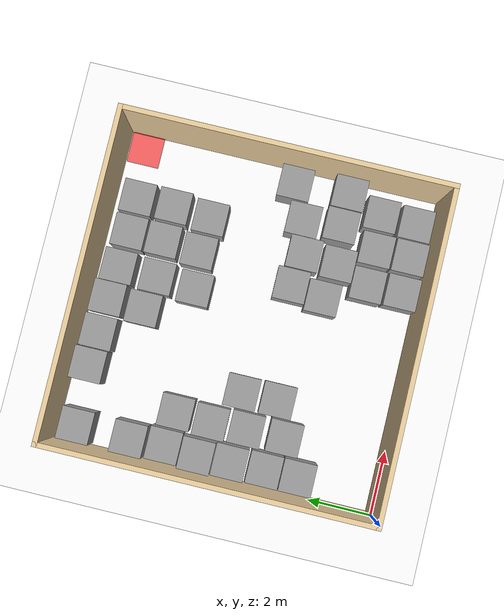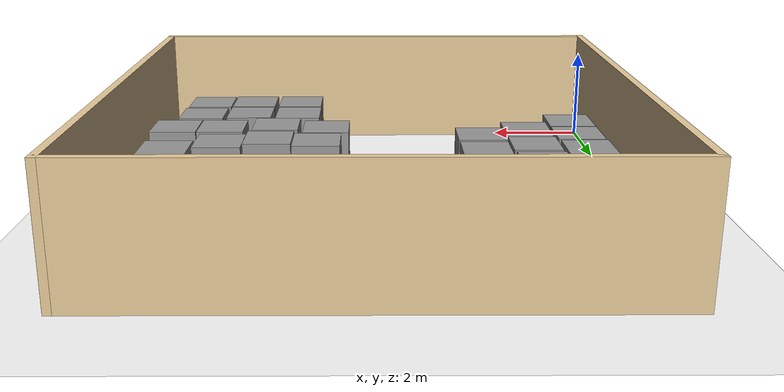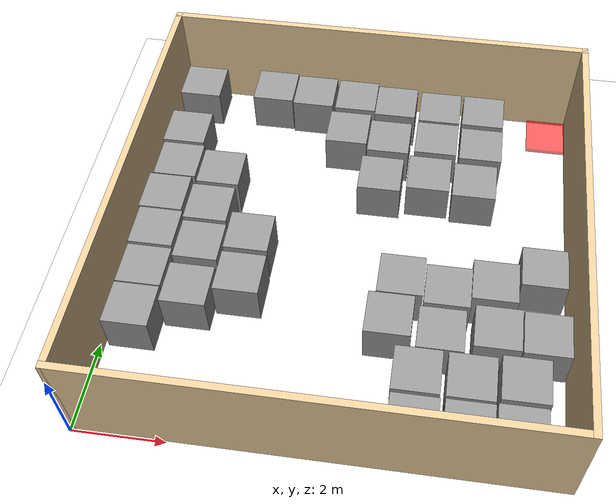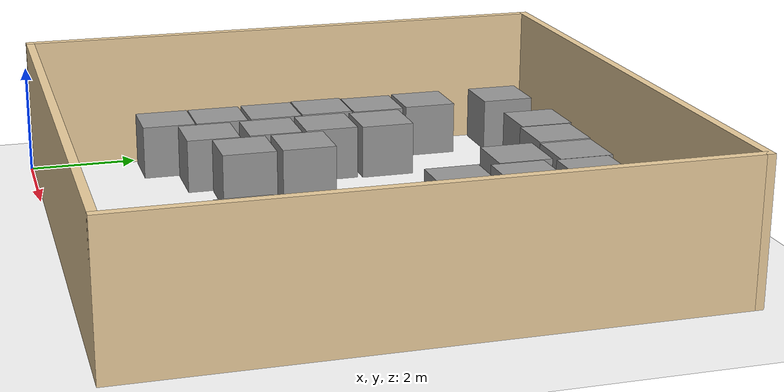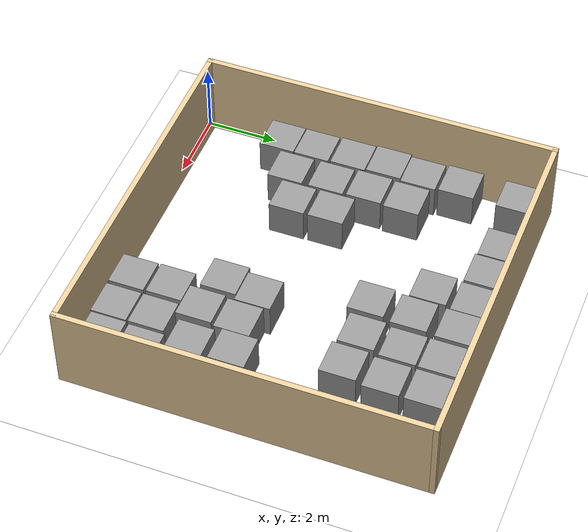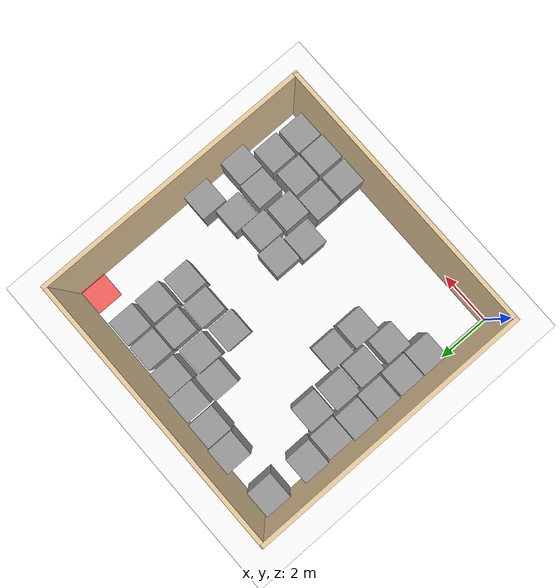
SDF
<sdf version="1.7">
 <world name="default">
  <light name="sun" type="directional">
   <pose>0 0 10 0 -0 0</pose>
   <diffuse>0.8 0.8 0.8 1</diffuse>
   <specular>0.2 0.2 0.2 1</specular>
   <attenuation>
    <range>1000</range>
    <constant>0.9</constant>
    <linear>0.01</linear>
    <quadratic>0.001</quadratic>
   </attenuation>
   <direction>-0.5 0.1 -0.9</direction>
   <spot><inner_angle>0</inner_angle><outer_angle>0</outer_angle><falloff>0</falloff></spot>
  </light>
  <gravity>0 0 -9.8</gravity>
  <magnetic_field>6e-06 2.3e-05 -4.2e-05</magnetic_field>
  <atmosphere type="adiabatic"/>
  <physics type="ode">
   <max_step_size>0.001</max_step_size>
   <real_time_factor>1</real_time_factor>
   <real_time_update_rate>1000</real_time_update_rate>
  </physics>
  <scene><ambient>0.4 0.4 0.4 1</ambient><background>0.7 0.7 0.7 1</background><shadows>1</shadows></scene>
  <audio><device>default</device></audio>
  <spherical_coordinates>
   <surface_model>EARTH_WGS84</surface_model>
   <latitude_deg>0</latitude_deg>
   <longitude_deg>0</longitude_deg>
   <elevation>0</elevation>
   <heading_deg>0</heading_deg>
  </spherical_coordinates>
  <model name="WALL">
   <pose>5.02351 5.11424 0 0 -0 0</pose>
   <link name="Wall_0">
    <collision name="Wall_0_Collision">
     <geometry><box><size>10.15 0.15 2.5</size></box></geometry>
     <pose>0 0 1.25 0 -0 0</pose>
    </collision>
    <visual name="Wall_0_Visual">
     <pose>0 0 1.25 0 -0 0</pose>
     <geometry><box><size>10.15 0.15 2.5</size></box></geometry>
     <material>
      <script><uri>file://media/materials/scripts/gazebo.material</uri><name>Gazebo/Grey</name></script>
      <ambient>0.921569 0.807843 0.615686 1</ambient>
     </material>
     <meta><layer>0</layer></meta>
    </visual>
    <pose>-5 -0 0 0 -0 1.5708</pose>
   </link>
   <link name="Wall_2">
    <collision name="Wall_2_Collision">
     <geometry><box><size>10.15 0.15 2.5</size></box></geometry>
     <pose>0 0 1.25 0 -0 0</pose>
    </collision>
    <visual name="Wall_2_Visual">
     <pose>0 0 1.25 0 -0 0</pose>
     <geometry><box><size>10.15 0.15 2.5</size></box></geometry>
     <material>
      <script><uri>file://media/materials/scripts/gazebo.material</uri><name>Gazebo/Grey</name></script>
      <ambient>0.921569 0.807843 0.615686 1</ambient>
     </material>
     <meta><layer>0</layer></meta>
    </visual>
    <pose>-0 -5 0 0 -0 0</pose>
   </link>
   <link name="Wall_4">
    <collision name="Wall_4_Collision">
     <geometry><box><size>10.15 0.15 2.5</size></box></geometry>
     <pose>0 0 1.25 0 -0 0</pose>
    </collision>
    <visual name="Wall_4_Visual">
     <pose>0 0 1.25 0 -0 0</pose>
     <geometry><box><size>10.15 0.15 2.5</size></box></geometry>
     <material>
      <script><uri>file://media/materials/scripts/gazebo.material</uri><name>Gazebo/Grey</name></script>
      <ambient>0.921569 0.807843 0.615686 1</ambient>
     </material>
     <meta><layer>0</layer></meta>
    </visual>
    <pose>5 -0 0 0 -0 1.5708</pose>
   </link>
   <link name="Wall_6">
    <collision name="Wall_6_Collision">
     <geometry><box><size>10.15 0.15 2.5</size></box></geometry>
     <pose>0 0 1.25 0 -0 0</pose>
    </collision>
    <visual name="Wall_6_Visual">
     <pose>0 0 1.25 0 -0 0</pose>
     <geometry><box><size>10.15 0.15 2.5</size></box></geometry>
     <material>
      <script><uri>file://media/materials/scripts/gazebo.material</uri><name>Gazebo/Grey</name></script>
      <ambient>0.921569 0.807843 0.615686 1</ambient>
     </material>
     <meta><layer>0</layer></meta>
    </visual>
    <pose>-0 5 0 0 -0 3.14159</pose>
   </link>
   <static>1</static>
  </model>
  <model name="ground_plane">
   <static>1</static>
   <link name="link">
    <collision name="collision">
     <geometry><plane><normal>0 0 1</normal><size>100 100</size></plane></geometry>
     <surface><friction><ode><mu>100</mu><mu2>50</mu2></ode></friction></surface>
    </collision>
    <visual name="visual">
     <cast_shadows>0</cast_shadows>
     <geometry><plane><normal>0 0 1</normal><size>100 100</size></plane></geometry>
     <material><ambient>1 1 1 1</ambient><diffuse>1 1 1 1</diffuse></material>
    </visual>
   </link>
   <pose>-1.76997 -0.846079 0 0 -0 0</pose>
  </model>
  <model name="goal_region">
   <static>1</static>
   <pose>9.5 9.5 0.05 0 -0 0</pose>
   <link name="link">
    <visual name="visual">
     <geometry><box><size>1 1 0.1</size></box></geometry>
     <material><ambient>1 0 0 0.6</ambient><diffuse>1 0 0 0.6</diffuse></material>
    </visual>
   </link>
  </model>
  <model name="start_marker"><static>1</static><pose>1 1 0 0 -0 0</pose></model>
  <model name="unit_box">
   <pose>0.684333 2.53291 0.5 0 -0 0.000202</pose>
   <link name="link">
    <inertial>
     <mass>1</mass>
     <inertia>
      <ixx>0.166667</ixx>
      <ixy>0</ixy>
      <ixz>0</ixz>
      <iyy>0.166667</iyy>
      <iyz>0</iyz>
      <izz>0.166667</izz>
     </inertia>
    </inertial>
    <collision name="collision"><geometry><box><size>1 1 1</size></box></geometry></collision>
    <visual name="visual">
     <geometry><box><size>1 1 1</size></box></geometry>
     <material>
      <script><name>Gazebo/Grey</name><uri>file://media/materials/scripts/gazebo.material</uri></script>
     </material>
    </visual>
   </link>
  </model>
  <model name="unit_box_0">
   <pose>0.686208 3.55625 0.499995 1e-05 -0 -0.002518</pose>
   <link name="link">
    <inertial>
     <mass>1</mass>
     <inertia>
      <ixx>0.166667</ixx>
      <ixy>0</ixy>
      <ixz>0</ixz>
      <iyy>0.166667</iyy>
      <iyz>0</iyz>
      <izz>0.166667</izz>
     </inertia>
    </inertial>
    <collision name="collision"><geometry><box><size>1 1 1</size></box></geometry></collision>
    <visual name="visual">
     <geometry><box><size>1 1 1</size></box></geometry>
     <material>
      <script><name>Gazebo/Grey</name><uri>file://media/materials/scripts/gazebo.material</uri></script>
     </material>
    </visual>
   </link>
  </model>
  <model name="unit_box_1">
   <pose>0.659016 4.62157 0.499995 1e-05 -0 0</pose>
   <link name="link">
    <inertial>
     <mass>1</mass>
     <inertia>
      <ixx>0.166667</ixx>
      <ixy>0</ixy>
      <ixz>0</ixz>
      <iyy>0.166667</iyy>
      <iyz>0</iyz>
      <izz>0.166667</izz>
     </inertia>
    </inertial>
    <collision name="collision"><geometry><box><size>1 1 1</size></box></geometry></collision>
    <visual name="visual">
     <geometry><box><size>1 1 1</size></box></geometry>
     <material>
      <script><name>Gazebo/Grey</name><uri>file://media/materials/scripts/gazebo.material</uri></script>
     </material>
    </visual>
   </link>
  </model>
  <model name="unit_box_2">
   <pose>0.615553 5.64892 0.499995 0 -1e-05 0</pose>
   <link name="link">
    <inertial>
     <mass>1</mass>
     <inertia>
      <ixx>0.166667</ixx>
      <ixy>0</ixy>
      <ixz>0</ixz>
      <iyy>0.166667</iyy>
      <iyz>0</iyz>
      <izz>0.166667</izz>
     </inertia>
    </inertial>
    <collision name="collision"><geometry><box><size>1 1 1</size></box></geometry></collision>
    <visual name="visual">
     <geometry><box><size>1 1 1</size></box></geometry>
     <material>
      <script><name>Gazebo/Grey</name><uri>file://media/materials/scripts/gazebo.material</uri></script>
     </material>
    </visual>
   </link>
  </model>
  <model name="unit_box_3">
   <pose>0.683261 6.67126 0.499995 1e-05 -0 0</pose>
   <link name="link">
    <inertial>
     <mass>1</mass>
     <inertia>
      <ixx>0.166667</ixx>
      <ixy>0</ixy>
      <ixz>0</ixz>
      <iyy>0.166667</iyy>
      <iyz>0</iyz>
      <izz>0.166667</izz>
     </inertia>
    </inertial>
    <collision name="collision"><geometry><box><size>1 1 1</size></box></geometry></collision>
    <visual name="visual">
     <geometry><box><size>1 1 1</size></box></geometry>
     <material>
      <script><name>Gazebo/Grey</name><uri>file://media/materials/scripts/gazebo.material</uri></script>
     </material>
    </visual>
   </link>
  </model>
  <model name="unit_box_5">
   <pose>1.7333 4.37155 0.499995 1e-05 -0 0</pose>
   <link name="link">
    <inertial>
     <mass>1</mass>
     <inertia>
      <ixx>0.166667</ixx>
      <ixy>0</ixy>
      <ixz>0</ixz>
      <iyy>0.166667</iyy>
      <iyz>0</iyz>
      <izz>0.166667</izz>
     </inertia>
    </inertial>
    <collision name="collision"><geometry><box><size>1 1 1</size></box></geometry></collision>
    <visual name="visual">
     <geometry><box><size>1 1 1</size></box></geometry>
     <material>
      <script><name>Gazebo/Grey</name><uri>file://media/materials/scripts/gazebo.material</uri></script>
     </material>
    </visual>
   </link>
  </model>
  <model name="unit_box_6">
   <pose>1.69952 5.46042 0.499995 0 -1e-05 0</pose>
   <link name="link">
    <inertial>
     <mass>1</mass>
     <inertia>
      <ixx>0.166667</ixx>
      <ixy>0</ixy>
      <ixz>0</ixz>
      <iyy>0.166667</iyy>
      <iyz>0</iyz>
      <izz>0.166667</izz>
     </inertia>
    </inertial>
    <collision name="collision"><geometry><box><size>1 1 1</size></box></geometry></collision>
    <visual name="visual">
     <geometry><box><size>1 1 1</size></box></geometry>
     <material>
      <script><name>Gazebo/Grey</name><uri>file://media/materials/scripts/gazebo.material</uri></script>
     </material>
    </visual>
   </link>
  </model>
  <model name="unit_box_4">
   <pose>1.74785 3.18807 0.499995 0 -1e-05 0</pose>
   <link name="link">
    <inertial>
     <mass>1</mass>
     <inertia>
      <ixx>0.166667</ixx>
      <ixy>0</ixy>
      <ixz>0</ixz>
      <iyy>0.166667</iyy>
      <iyz>0</iyz>
      <izz>0.166667</izz>
     </inertia>
    </inertial>
    <collision name="collision"><geometry><box><size>1 1 1</size></box></geometry></collision>
    <visual name="visual">
     <geometry><box><size>1 1 1</size></box></geometry>
     <material>
      <script><name>Gazebo/Grey</name><uri>file://media/materials/scripts/gazebo.material</uri></script>
     </material>
    </visual>
   </link>
  </model>
  <model name="unit_box_7">
   <pose>2.79763 3.64438 0.499995 1e-05 -0 0</pose>
   <link name="link">
    <inertial>
     <mass>1</mass>
     <inertia>
      <ixx>0.166667</ixx>
      <ixy>0</ixy>
      <ixz>0</ixz>
      <iyy>0.166667</iyy>
      <iyz>0</iyz>
      <izz>0.166667</izz>
     </inertia>
    </inertial>
    <collision name="collision"><geometry><box><size>1 1 1</size></box></geometry></collision>
    <visual name="visual">
     <geometry><box><size>1 1 1</size></box></geometry>
     <material>
      <script><name>Gazebo/Grey</name><uri>file://media/materials/scripts/gazebo.material</uri></script>
     </material>
    </visual>
   </link>
  </model>
  <model name="unit_box_8">
   <pose>2.7843 4.75657 0.499995 0 -1e-05 0</pose>
   <link name="link">
    <inertial>
     <mass>1</mass>
     <inertia>
      <ixx>0.166667</ixx>
      <ixy>0</ixy>
      <ixz>0</ixz>
      <iyy>0.166667</iyy>
      <iyz>0</iyz>
      <izz>0.166667</izz>
     </inertia>
    </inertial>
    <collision name="collision"><geometry><box><size>1 1 1</size></box></geometry></collision>
    <visual name="visual">
     <geometry><box><size>1 1 1</size></box></geometry>
     <material>
      <script><name>Gazebo/Grey</name><uri>file://media/materials/scripts/gazebo.material</uri></script>
     </material>
    </visual>
   </link>
  </model>
  <model name="unit_box_9">
   <pose>0.63347 7.75051 0.499995 1e-05 -0 0</pose>
   <link name="link">
    <inertial>
     <mass>1</mass>
     <inertia>
      <ixx>0.166667</ixx>
      <ixy>0</ixy>
      <ixz>0</ixz>
      <iyy>0.166667</iyy>
      <iyz>0</iyz>
      <izz>0.166667</izz>
     </inertia>
    </inertial>
    <collision name="collision"><geometry><box><size>1 1 1</size></box></geometry></collision>
    <visual name="visual">
     <geometry><box><size>1 1 1</size></box></geometry>
     <material>
      <script><name>Gazebo/Grey</name><uri>file://media/materials/scripts/gazebo.material</uri></script>
     </material>
    </visual>
   </link>
  </model>
  <model name="unit_box_10">
   <pose>1.74209 6.55089 0.499995 0 -1e-05 0</pose>
   <link name="link">
    <inertial>
     <mass>1</mass>
     <inertia>
      <ixx>0.166667</ixx>
      <ixy>0</ixy>
      <ixz>0</ixz>
      <iyy>0.166667</iyy>
      <iyz>0</iyz>
      <izz>0.166667</izz>
     </inertia>
    </inertial>
    <collision name="collision"><geometry><box><size>1 1 1</size></box></geometry></collision>
    <visual name="visual">
     <geometry><box><size>1 1 1</size></box></geometry>
     <material>
      <script><name>Gazebo/Grey</name><uri>file://media/materials/scripts/gazebo.material</uri></script>
     </material>
    </visual>
   </link>
  </model>
  <model name="unit_box_11">
   <pose>2.51194 9.47552 0.499995 1e-05 -0 0</pose>
   <link name="link">
    <inertial>
     <mass>1</mass>
     <inertia>
      <ixx>0.166667</ixx>
      <ixy>0</ixy>
      <ixz>0</ixz>
      <iyy>0.166667</iyy>
      <iyz>0</iyz>
      <izz>0.166667</izz>
     </inertia>
    </inertial>
    <collision name="collision"><geometry><box><size>1 1 1</size></box></geometry></collision>
    <visual name="visual">
     <geometry><box><size>1 1 1</size></box></geometry>
     <material>
      <script><name>Gazebo/Grey</name><uri>file://media/materials/scripts/gazebo.material</uri></script>
     </material>
    </visual>
   </link>
  </model>
  <model name="unit_box_12">
   <pose>3.54198 9.41732 0.499995 0 -1e-05 0</pose>
   <link name="link">
    <inertial>
     <mass>1</mass>
     <inertia>
      <ixx>0.166667</ixx>
      <ixy>0</ixy>
      <ixz>0</ixz>
      <iyy>0.166667</iyy>
      <iyz>0</iyz>
      <izz>0.166667</izz>
     </inertia>
    </inertial>
    <collision name="collision"><geometry><box><size>1 1 1</size></box></geometry></collision>
    <visual name="visual">
     <geometry><box><size>1 1 1</size></box></geometry>
     <material>
      <script><name>Gazebo/Grey</name><uri>file://media/materials/scripts/gazebo.material</uri></script>
     </material>
    </visual>
   </link>
  </model>
  <model name="unit_box_13">
   <pose>4.61066 9.39227 0.499995 1e-05 -0 0</pose>
   <link name="link">
    <inertial>
     <mass>1</mass>
     <inertia>
      <ixx>0.166667</ixx>
      <ixy>0</ixy>
      <ixz>0</ixz>
      <iyy>0.166667</iyy>
      <iyz>0</iyz>
      <izz>0.166667</izz>
     </inertia>
    </inertial>
    <collision name="collision"><geometry><box><size>1 1 1</size></box></geometry></collision>
    <visual name="visual">
     <geometry><box><size>1 1 1</size></box></geometry>
     <material>
      <script><name>Gazebo/Grey</name><uri>file://media/materials/scripts/gazebo.material</uri></script>
     </material>
    </visual>
   </link>
  </model>
  <model name="unit_box_14">
   <pose>5.61989 9.302 0.499995 0 -1e-05 0</pose>
   <link name="link">
    <inertial>
     <mass>1</mass>
     <inertia>
      <ixx>0.166667</ixx>
      <ixy>0</ixy>
      <ixz>0</ixz>
      <iyy>0.166667</iyy>
      <iyz>0</iyz>
      <izz>0.166667</izz>
     </inertia>
    </inertial>
    <collision name="collision"><geometry><box><size>1 1 1</size></box></geometry></collision>
    <visual name="visual">
     <geometry><box><size>1 1 1</size></box></geometry>
     <material>
      <script><name>Gazebo/Grey</name><uri>file://media/materials/scripts/gazebo.material</uri></script>
     </material>
    </visual>
   </link>
  </model>
  <model name="unit_box_15">
   <pose>6.72504 9.23556 0.499995 1e-05 -0 0</pose>
   <link name="link">
    <inertial>
     <mass>1</mass>
     <inertia>
      <ixx>0.166667</ixx>
      <ixy>0</ixy>
      <ixz>0</ixz>
      <iyy>0.166667</iyy>
      <iyz>0</iyz>
      <izz>0.166667</izz>
     </inertia>
    </inertial>
    <collision name="collision"><geometry><box><size>1 1 1</size></box></geometry></collision>
    <visual name="visual">
     <geometry><box><size>1 1 1</size></box></geometry>
     <material>
      <script><name>Gazebo/Grey</name><uri>file://media/materials/scripts/gazebo.material</uri></script>
     </material>
    </visual>
   </link>
  </model>
  <model name="unit_box_16">
   <pose>7.79772 9.23388 0.499995 0 -1e-05 0</pose>
   <link name="link">
    <inertial>
     <mass>1</mass>
     <inertia>
      <ixx>0.166667</ixx>
      <ixy>0</ixy>
      <ixz>0</ixz>
      <iyy>0.166667</iyy>
      <iyz>0</iyz>
      <izz>0.166667</izz>
     </inertia>
    </inertial>
    <collision name="collision"><geometry><box><size>1 1 1</size></box></geometry></collision>
    <visual name="visual">
     <geometry><box><size>1 1 1</size></box></geometry>
     <material>
      <script><name>Gazebo/Grey</name><uri>file://media/materials/scripts/gazebo.material</uri></script>
     </material>
    </visual>
   </link>
  </model>
  <model name="unit_box_17">
   <pose>7.79925 8.10623 0.499995 1e-05 -0 0</pose>
   <link name="link">
    <inertial>
     <mass>1</mass>
     <inertia>
      <ixx>0.166667</ixx>
      <ixy>0</ixy>
      <ixz>0</ixz>
      <iyy>0.166667</iyy>
      <iyz>0</iyz>
      <izz>0.166667</izz>
     </inertia>
    </inertial>
    <collision name="collision"><geometry><box><size>1 1 1</size></box></geometry></collision>
    <visual name="visual">
     <geometry><box><size>1 1 1</size></box></geometry>
     <material>
      <script><name>Gazebo/Grey</name><uri>file://media/materials/scripts/gazebo.material</uri></script>
     </material>
    </visual>
   </link>
  </model>
  <model name="unit_box_18">
   <pose>7.71127 6.93281 0.499995 0 -1e-05 0</pose>
   <link name="link">
    <inertial>
     <mass>1</mass>
     <inertia>
      <ixx>0.166667</ixx>
      <ixy>0</ixy>
      <ixz>0</ixz>
      <iyy>0.166667</iyy>
      <iyz>0</iyz>
      <izz>0.166667</izz>
     </inertia>
    </inertial>
    <collision name="collision"><geometry><box><size>1 1 1</size></box></geometry></collision>
    <visual name="visual">
     <geometry><box><size>1 1 1</size></box></geometry>
     <material>
      <script><name>Gazebo/Grey</name><uri>file://media/materials/scripts/gazebo.material</uri></script>
     </material>
    </visual>
   </link>
  </model>
  <model name="unit_box_19">
   <pose>6.71785 8.17372 0.499995 1e-05 -0 0</pose>
   <link name="link">
    <inertial>
     <mass>1</mass>
     <inertia>
      <ixx>0.166667</ixx>
      <ixy>0</ixy>
      <ixz>0</ixz>
      <iyy>0.166667</iyy>
      <iyz>0</iyz>
      <izz>0.166667</izz>
     </inertia>
    </inertial>
    <collision name="collision"><geometry><box><size>1 1 1</size></box></geometry></collision>
    <visual name="visual">
     <geometry><box><size>1 1 1</size></box></geometry>
     <material>
      <script><name>Gazebo/Grey</name><uri>file://media/materials/scripts/gazebo.material</uri></script>
     </material>
    </visual>
   </link>
  </model>
  <model name="unit_box_20">
   <pose>6.63331 7.02592 0.499995 0 -1e-05 0</pose>
   <link name="link">
    <inertial>
     <mass>1</mass>
     <inertia>
      <ixx>0.166667</ixx>
      <ixy>0</ixy>
      <ixz>0</ixz>
      <iyy>0.166667</iyy>
      <iyz>0</iyz>
      <izz>0.166667</izz>
     </inertia>
    </inertial>
    <collision name="collision"><geometry><box><size>1 1 1</size></box></geometry></collision>
    <visual name="visual">
     <geometry><box><size>1 1 1</size></box></geometry>
     <material>
      <script><name>Gazebo/Grey</name><uri>file://media/materials/scripts/gazebo.material</uri></script>
     </material>
    </visual>
   </link>
  </model>
  <model name="unit_box_21">
   <pose>9.36046 4.64862 0.499995 1e-05 -0 0</pose>
   <link name="link">
    <inertial>
     <mass>1</mass>
     <inertia>
      <ixx>0.166667</ixx>
      <ixy>0</ixy>
      <ixz>0</ixz>
      <iyy>0.166667</iyy>
      <iyz>0</iyz>
      <izz>0.166667</izz>
     </inertia>
    </inertial>
    <collision name="collision"><geometry><box><size>1 1 1</size></box></geometry></collision>
    <visual name="visual">
     <geometry><box><size>1 1 1</size></box></geometry>
     <material>
      <script><name>Gazebo/Grey</name><uri>file://media/materials/scripts/gazebo.material</uri></script>
     </material>
    </visual>
   </link>
  </model>
  <model name="unit_box_22">
   <pose>8.31559 4.15573 0.499995 0 1e-05 0</pose>
   <link name="link">
    <inertial>
     <mass>1</mass>
     <inertia>
      <ixx>0.166667</ixx>
      <ixy>0</ixy>
      <ixz>0</ixz>
      <iyy>0.166667</iyy>
      <iyz>0</iyz>
      <izz>0.166667</izz>
     </inertia>
    </inertial>
    <collision name="collision"><geometry><box><size>1 1 1</size></box></geometry></collision>
    <visual name="visual">
     <geometry><box><size>1 1 1</size></box></geometry>
     <material>
      <script><name>Gazebo/Grey</name><uri>file://media/materials/scripts/gazebo.material</uri></script>
     </material>
    </visual>
   </link>
  </model>
  <model name="unit_box_23">
   <pose>7.30991 3.89758 0.499995 -1e-05 -0 -0</pose>
   <link name="link">
    <inertial>
     <mass>1</mass>
     <inertia>
      <ixx>0.166667</ixx>
      <ixy>0</ixy>
      <ixz>0</ixz>
      <iyy>0.166667</iyy>
      <iyz>0</iyz>
      <izz>0.166667</izz>
     </inertia>
    </inertial>
    <collision name="collision"><geometry><box><size>1 1 1</size></box></geometry></collision>
    <visual name="visual">
     <geometry><box><size>1 1 1</size></box></geometry>
     <material>
      <script><name>Gazebo/Grey</name><uri>file://media/materials/scripts/gazebo.material</uri></script>
     </material>
    </visual>
   </link>
  </model>
  <model name="unit_box_24">
   <pose>6.28311 4.0579 0.499995 0 1e-05 0</pose>
   <link name="link">
    <inertial>
     <mass>1</mass>
     <inertia>
      <ixx>0.166667</ixx>
      <ixy>0</ixy>
      <ixz>0</ixz>
      <iyy>0.166667</iyy>
      <iyz>0</iyz>
      <izz>0.166667</izz>
     </inertia>
    </inertial>
    <collision name="collision"><geometry><box><size>1 1 1</size></box></geometry></collision>
    <visual name="visual">
     <geometry><box><size>1 1 1</size></box></geometry>
     <material>
      <script><name>Gazebo/Grey</name><uri>file://media/materials/scripts/gazebo.material</uri></script>
     </material>
    </visual>
   </link>
  </model>
  <model name="unit_box_25">
   <pose>5.57596 8.07963 0.499995 -1e-05 -0 -0</pose>
   <link name="link">
    <inertial>
     <mass>1</mass>
     <inertia>
      <ixx>0.166667</ixx>
      <ixy>0</ixy>
      <ixz>0</ixz>
      <iyy>0.166667</iyy>
      <iyz>0</iyz>
      <izz>0.166667</izz>
     </inertia>
    </inertial>
    <collision name="collision"><geometry><box><size>1 1 1</size></box></geometry></collision>
    <visual name="visual">
     <geometry><box><size>1 1 1</size></box></geometry>
     <material>
      <script><name>Gazebo/Grey</name><uri>file://media/materials/scripts/gazebo.material</uri></script>
     </material>
    </visual>
   </link>
  </model>
  <model name="unit_box_26">
   <pose>5.49831 6.87997 0.499995 0 1e-05 0</pose>
   <link name="link">
    <inertial>
     <mass>1</mass>
     <inertia>
      <ixx>0.166667</ixx>
      <ixy>0</ixy>
      <ixz>0</ixz>
      <iyy>0.166667</iyy>
      <iyz>0</iyz>
      <izz>0.166667</izz>
     </inertia>
    </inertial>
    <collision name="collision"><geometry><box><size>1 1 1</size></box></geometry></collision>
    <visual name="visual">
     <geometry><box><size>1 1 1</size></box></geometry>
     <material>
      <script><name>Gazebo/Grey</name><uri>file://media/materials/scripts/gazebo.material</uri></script>
     </material>
    </visual>
   </link>
  </model>
  <model name="unit_box_27">
   <pose>4.5442 8.25733 0.499995 -1e-05 -0 -0</pose>
   <link name="link">
    <inertial>
     <mass>1</mass>
     <inertia>
      <ixx>0.166667</ixx>
      <ixy>0</ixy>
      <ixz>0</ixz>
      <iyy>0.166667</iyy>
      <iyz>0</iyz>
      <izz>0.166667</izz>
     </inertia>
    </inertial>
    <collision name="collision"><geometry><box><size>1 1 1</size></box></geometry></collision>
    <visual name="visual">
     <geometry><box><size>1 1 1</size></box></geometry>
     <material>
      <script><name>Gazebo/Grey</name><uri>file://media/materials/scripts/gazebo.material</uri></script>
     </material>
    </visual>
   </link>
  </model>
  <model name="unit_box_28">
   <pose>0.648759 9.39464 0.499995 0 1e-05 0</pose>
   <link name="link">
    <inertial>
     <mass>1</mass>
     <inertia>
      <ixx>0.166667</ixx>
      <ixy>0</ixy>
      <ixz>0</ixz>
      <iyy>0.166667</iyy>
      <iyz>0</iyz>
      <izz>0.166667</izz>
     </inertia>
    </inertial>
    <collision name="collision"><geometry><box><size>1 1 1</size></box></geometry></collision>
    <visual name="visual">
     <geometry><box><size>1 1 1</size></box></geometry>
     <material>
      <script><name>Gazebo/Grey</name><uri>file://media/materials/scripts/gazebo.material</uri></script>
     </material>
    </visual>
   </link>
  </model>
  <model name="unit_box_29">
   <pose>6.1264 3.03539 0.499995 -1e-05 -0 -0</pose>
   <link name="link">
    <inertial>
     <mass>1</mass>
     <inertia>
      <ixx>0.166667</ixx>
      <ixy>0</ixy>
      <ixz>0</ixz>
      <iyy>0.166667</iyy>
      <iyz>0</iyz>
      <izz>0.166667</izz>
     </inertia>
    </inertial>
    <collision name="collision"><geometry><box><size>1 1 1</size></box></geometry></collision>
    <visual name="visual">
     <geometry><box><size>1 1 1</size></box></geometry>
     <material>
      <script><name>Gazebo/Grey</name><uri>file://media/materials/scripts/gazebo.material</uri></script>
     </material>
    </visual>
   </link>
  </model>
  <model name="unit_box_30">
   <pose>7.2413 2.81216 0.499995 0 1e-05 0</pose>
   <link name="link">
    <inertial>
     <mass>1</mass>
     <inertia>
      <ixx>0.166667</ixx>
      <ixy>0</ixy>
      <ixz>0</ixz>
      <iyy>0.166667</iyy>
      <iyz>0</iyz>
      <izz>0.166667</izz>
     </inertia>
    </inertial>
    <collision name="collision"><geometry><box><size>1 1 1</size></box></geometry></collision>
    <visual name="visual">
     <geometry><box><size>1 1 1</size></box></geometry>
     <material>
      <script><name>Gazebo/Grey</name><uri>file://media/materials/scripts/gazebo.material</uri></script>
     </material>
    </visual>
   </link>
  </model>
  <model name="unit_box_31">
   <pose>8.41559 2.99209 0.499995 -1e-05 -0 -0</pose>
   <link name="link">
    <inertial>
     <mass>1</mass>
     <inertia>
      <ixx>0.166667</ixx>
      <ixy>0</ixy>
      <ixz>0</ixz>
      <iyy>0.166667</iyy>
      <iyz>0</iyz>
      <izz>0.166667</izz>
     </inertia>
    </inertial>
    <collision name="collision"><geometry><box><size>1 1 1</size></box></geometry></collision>
    <visual name="visual">
     <geometry><box><size>1 1 1</size></box></geometry>
     <material>
      <script><name>Gazebo/Grey</name><uri>file://media/materials/scripts/gazebo.material</uri></script>
     </material>
    </visual>
   </link>
  </model>
  <model name="unit_box_32">
   <pose>6.82484 1.79653 0.499995 0 1e-05 0</pose>
   <link name="link">
    <inertial>
     <mass>1</mass>
     <inertia>
      <ixx>0.166667</ixx>
      <ixy>0</ixy>
      <ixz>0</ixz>
      <iyy>0.166667</iyy>
      <iyz>0</iyz>
      <izz>0.166667</izz>
     </inertia>
    </inertial>
    <collision name="collision"><geometry><box><size>1 1 1</size></box></geometry></collision>
    <visual name="visual">
     <geometry><box><size>1 1 1</size></box></geometry>
     <material>
      <script><name>Gazebo/Grey</name><uri>file://media/materials/scripts/gazebo.material</uri></script>
     </material>
    </visual>
   </link>
  </model>
  <model name="unit_box_33">
   <pose>6.84092 0.730733 0.499995 -1e-05 -0 -0</pose>
   <link name="link">
    <inertial>
     <mass>1</mass>
     <inertia>
      <ixx>0.166667</ixx>
      <ixy>0</ixy>
      <ixz>0</ixz>
      <iyy>0.166667</iyy>
      <iyz>0</iyz>
      <izz>0.166667</izz>
     </inertia>
    </inertial>
    <collision name="collision"><geometry><box><size>1 1 1</size></box></geometry></collision>
    <visual name="visual">
     <geometry><box><size>1 1 1</size></box></geometry>
     <material>
      <script><name>Gazebo/Grey</name><uri>file://media/materials/scripts/gazebo.material</uri></script>
     </material>
    </visual>
   </link>
  </model>
  <model name="unit_box_34">
   <pose>7.93574 1.78461 0.499995 0 1e-05 0</pose>
   <link name="link">
    <inertial>
     <mass>1</mass>
     <inertia>
      <ixx>0.166667</ixx>
      <ixy>0</ixy>
      <ixz>0</ixz>
      <iyy>0.166667</iyy>
      <iyz>0</iyz>
      <izz>0.166667</izz>
     </inertia>
    </inertial>
    <collision name="collision"><geometry><box><size>1 1 1</size></box></geometry></collision>
    <visual name="visual">
     <geometry><box><size>1 1 1</size></box></geometry>
     <material>
      <script><name>Gazebo/Grey</name><uri>file://media/materials/scripts/gazebo.material</uri></script>
     </material>
    </visual>
   </link>
  </model>
  <model name="unit_box_35">
   <pose>7.9378 0.735465 0.499995 -1e-05 -0 -0</pose>
   <link name="link">
    <inertial>
     <mass>1</mass>
     <inertia>
      <ixx>0.166667</ixx>
      <ixy>0</ixy>
      <ixz>0</ixz>
      <iyy>0.166667</iyy>
      <iyz>0</iyz>
      <izz>0.166667</izz>
     </inertia>
    </inertial>
    <collision name="collision"><geometry><box><size>1 1 1</size></box></geometry></collision>
    <visual name="visual">
     <geometry><box><size>1 1 1</size></box></geometry>
     <material>
      <script><name>Gazebo/Grey</name><uri>file://media/materials/scripts/gazebo.material</uri></script>
     </material>
    </visual>
   </link>
  </model>
  <model name="unit_box_36">
   <pose>8.97269 0.775851 0.499995 0 1e-05 0</pose>
   <link name="link">
    <inertial>
     <mass>1</mass>
     <inertia>
      <ixx>0.166667</ixx>
      <ixy>0</ixy>
      <ixz>0</ixz>
      <iyy>0.166667</iyy>
      <iyz>0</iyz>
      <izz>0.166667</izz>
     </inertia>
    </inertial>
    <collision name="collision"><geometry><box><size>1 1 1</size></box></geometry></collision>
    <visual name="visual">
     <geometry><box><size>1 1 1</size></box></geometry>
     <material>
      <script><name>Gazebo/Grey</name><uri>file://media/materials/scripts/gazebo.material</uri></script>
     </material>
    </visual>
   </link>
  </model>
  <model name="unit_box_37">
   <pose>9.01688 1.86085 0.499995 -1e-05 -0 0</pose>
   <link name="link">
    <inertial>
     <mass>1</mass>
     <inertia>
      <ixx>0.166667</ixx>
      <ixy>0</ixy>
      <ixz>0</ixz>
      <iyy>0.166667</iyy>
      <iyz>0</iyz>
      <izz>0.166667</izz>
     </inertia>
    </inertial>
    <collision name="collision"><geometry><box><size>1 1 1</size></box></geometry></collision>
    <visual name="visual">
     <geometry><box><size>1 1 1</size></box></geometry>
     <material>
      <script><name>Gazebo/Grey</name><uri>file://media/materials/scripts/gazebo.material</uri></script>
     </material>
    </visual>
   </link>
  </model>
  <model name="unit_box_38">
   <pose>9.43698 2.96874 0.5 0 -0 0</pose>
   <link name="link">
    <inertial>
     <mass>1</mass>
     <inertia>
      <ixx>0.166667</ixx>
      <ixy>0</ixy>
      <ixz>0</ixz>
      <iyy>0.166667</iyy>
      <iyz>0</iyz>
      <izz>0.166667</izz>
     </inertia>
    </inertial>
    <collision name="collision"><geometry><box><size>1 1 1</size></box></geometry></collision>
    <visual name="visual">
     <geometry><box><size>1 1 1</size></box></geometry>
     <material>
      <script><name>Gazebo/Grey</name><uri>file://media/materials/scripts/gazebo.material</uri></script>
     </material>
    </visual>
   </link>
  </model>
 </world>
</sdf>
